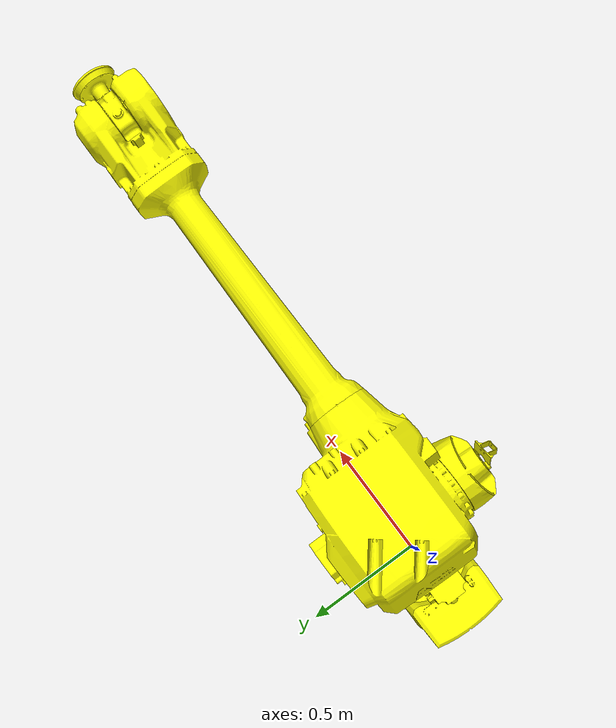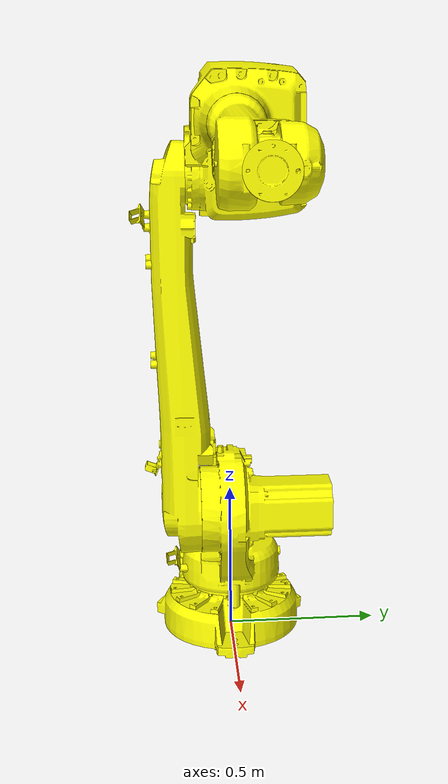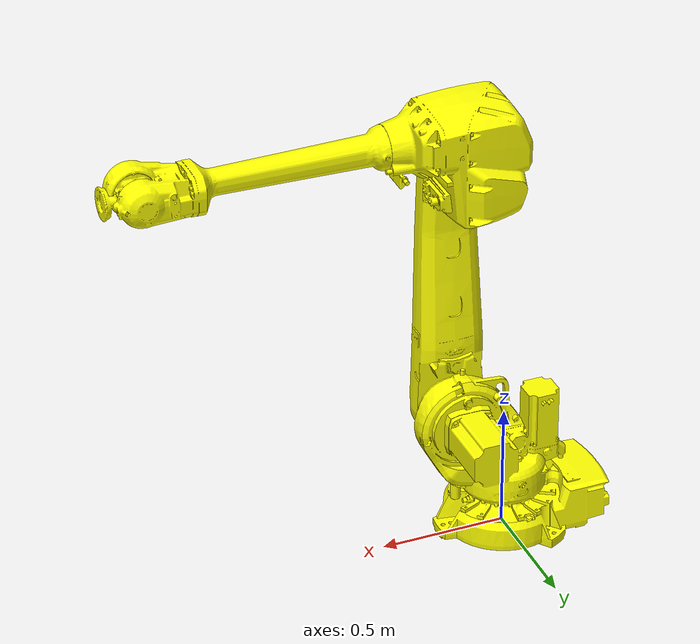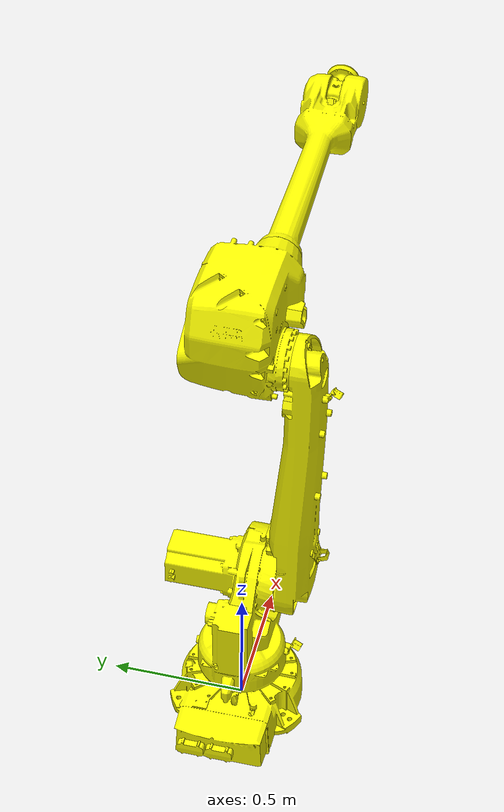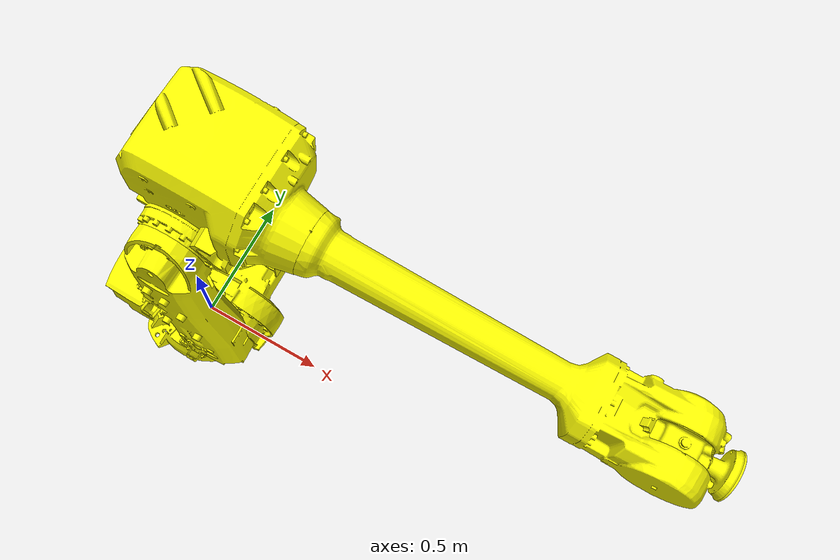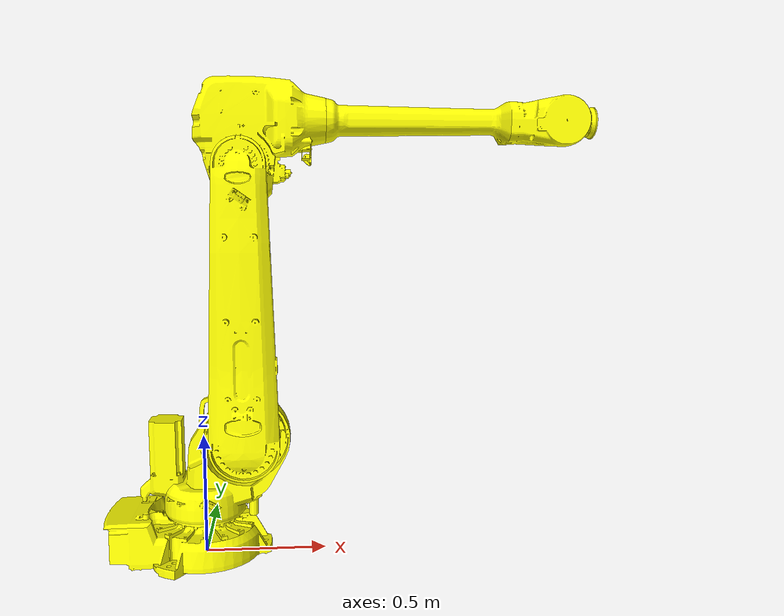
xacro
<?xml version="1.0" ?>

<robot name="abb_irb4600_40_255" xmlns:xacro="http://ros.org/wiki/xacro">
  <xacro:include filename="$(find abb_irb4600_gazebo)/urdf/irb4600_40_255_macro.xacro"/>
  <xacro:abb_irb4600_40_255_g prefix=""/>

  <!-- Fix robot to Gazebo world -->
  <link name="world"/>
  <joint name="world-base_link-fixed" type="fixed">
    <parent link="world"/>
    <child link="base_link"/>
  </joint>
</robot>

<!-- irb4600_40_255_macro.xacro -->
<robot xmlns:xacro="http://ros.org/wiki/xacro">
<xacro:include filename="$(find abb_irb4600_support)/urdf/irb4600_40_255_macro.xacro"/>
<xacro:macro name="abb_irb4600_40_255_g" params="prefix">

  <!-- get base ABB IRB4600 model -->
  <xacro:abb_irb4600_40_255 prefix="${prefix}" />

  <!-- transmission list -->
    <transmission name="${prefix}trans_joint_1">
        <type>transmission_interface/SimpleTransmission</type>
        <joint name="${prefix}joint_1">
            <hardwareInterface>PositionJointInterface</hardwareInterface>
        </joint>
        <actuator name="${prefix}joint_1_motor">
            <mechanicalReduction>1</mechanicalReduction>
        </actuator>
    </transmission>
    <transmission name="${prefix}trans_joint_2">
        <type>transmission_interface/SimpleTransmission</type>
        <joint name="joint_2">
            <hardwareInterface>PositionJointInterface</hardwareInterface>
        </joint>
        <actuator name="${prefix}joint_2_motor">
            <mechanicalReduction>1</mechanicalReduction>
        </actuator>
    </transmission>
    <transmission name="${prefix}trans_joint_3">
        <type>transmission_interface/SimpleTransmission</type>
        <joint name="${prefix}joint_3">
            <hardwareInterface>PositionJointInterface</hardwareInterface>
        </joint>
        <actuator name="${prefix}joint_3_motor">
            <mechanicalReduction>1</mechanicalReduction>
        </actuator>
    </transmission>
    <transmission name="${prefix}trans_joint_4">
        <type>transmission_interface/SimpleTransmission</type>
        <joint name="${prefix}joint_4">
            <hardwareInterface>PositionJointInterface</hardwareInterface>
        </joint>
        <actuator name="${prefix}joint_4_motor">
            <mechanicalReduction>1</mechanicalReduction>
        </actuator>
    </transmission>
    <transmission name="${prefix}trans_joint_5">
        <type>transmission_interface/SimpleTransmission</type>
        <joint name="joint_5">
            <hardwareInterface>PositionJointInterface</hardwareInterface>
        </joint>
        <actuator name="${prefix}joint_5_motor">
            <mechanicalReduction>1</mechanicalReduction>
        </actuator>
    </transmission>
    <transmission name="${prefix}trans_joint_6">
        <type>transmission_interface/SimpleTransmission</type>
        <joint name="joint_6">
            <hardwareInterface>PositionJointInterface</hardwareInterface>
        </joint>
        <actuator name="${prefix}joint_6_motor">
            <mechanicalReduction>1</mechanicalReduction>
        </actuator>
    </transmission>
  <!-- end of transmission list -->

  <!-- Gazebo-specific link properties -->
  <gazebo reference="${prefix}base_link">
    <material>Gazebo/Orange</material>
    <turnGravityOff>true</turnGravityOff>
  </gazebo>
  <gazebo reference="${prefix}link_1">
    <material>Gazebo/Orange</material>
    <turnGravityOff>true</turnGravityOff>
  </gazebo>
  <gazebo reference="${prefix}link_2">
    <material>Gazebo/Orange</material>
    <turnGravityOff>true</turnGravityOff>
  </gazebo>
  <gazebo reference="${prefix}link_3">
    <material>Gazebo/Orange</material>
    <turnGravityOff>true</turnGravityOff>
  </gazebo>
  <gazebo reference="${prefix}link_4">
    <material>Gazebo/Orange</material>
    <turnGravityOff>true</turnGravityOff>
  </gazebo>
  <gazebo reference="${prefix}link_5">
    <material>Gazebo/Orange</material>
    <turnGravityOff>true</turnGravityOff>
  </gazebo>
  <gazebo reference="${prefix}link_6">
    <material>Gazebo/Black</material>
    <turnGravityOff>true</turnGravityOff>
  </gazebo>

  <!-- ros_control plugin -->
  <gazebo>
    <plugin name="gazebo_ros_control" filename="libgazebo_ros_control.so">
      <robotNamespace>/</robotNamespace>
      <robotSimType>gazebo_ros_control/DefaultRobotHWSim</robotSimType>
    </plugin>
  </gazebo>

  </xacro:macro>
</robot>

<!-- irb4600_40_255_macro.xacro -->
<robot xmlns:xacro="http://ros.org/wiki/xacro">
  <xacro:macro name="abb_irb4600_40_255" params="prefix">
    <xacro:include filename="$(find abb_resources)/urdf/common_materials.xacro"/>

    <!-- link list -->
    <link name="${prefix}base_link">
      <collision name="collision">
        <geometry>
          <mesh filename="package://abb_irb4600_support/meshes/irb4600/collision/base_link.stl"/>
        </geometry>
        <xacro:material_abb_white/>
      </collision>
      <visual name="visual">
        <geometry>
          <mesh filename="package://abb_irb4600_support/meshes/irb4600/visual/base_link.dae"/>
        </geometry>
        <xacro:material_abb_white/>
        <material name="yellow">
          <color rgba="1 1 0 1"/>
        </material>
      </visual>
      <inertial>
        <mass value="0.1" />
        <inertia ixx="0.03" iyy="0.03" izz="0.03" ixy="0.0" ixz="0.0" iyz="0.0" />
      </inertial>
    </link>

    <link name="${prefix}link_1">
      <collision name="collision">
        <geometry>
          <mesh filename="package://abb_irb4600_support/meshes/irb4600/collision/link_1.stl"/>
        </geometry>
        <xacro:material_abb_white/>
      </collision>
      <visual name="visual">
        <geometry>
          <mesh filename="package://abb_irb4600_support/meshes/irb4600/visual/link_1.dae"/>
        </geometry>
        <xacro:material_abb_white/>
        <material name="yellow"/>
      </visual>
      <inertial>
        <mass value="0.1" />
        <inertia ixx="0.03" iyy="0.03" izz="0.03" ixy="0.0" ixz="0.0" iyz="0.0" />
      </inertial>
    </link>

    <link name="${prefix}link_2">
      <collision name="collision">
        <geometry>
          <mesh filename="package://abb_irb4600_support/meshes/irb4600_40_255/collision/link_2.stl"/>
        </geometry>
        <xacro:material_abb_white/>
      </collision>
      <visual name="visual">
        <geometry>
          <mesh filename="package://abb_irb4600_support/meshes/irb4600_40_255/visual/link_2.dae"/>
        </geometry>
        <xacro:material_abb_white/>
        <material name="yellow"/>
      </visual>
      <inertial>
        <mass value="0.1" />
        <inertia ixx="0.03" iyy="0.03" izz="0.03" ixy="0.0" ixz="0.0" iyz="0.0" />
      </inertial>
    </link>

    <link name="${prefix}link_3">
      <collision name="collision">
        <geometry>
          <mesh filename="package://abb_irb4600_support/meshes/irb4600_40_255/collision/link_3.stl"/>
        </geometry>
        <xacro:material_abb_white/>
      </collision>
      <visual name="visual">
        <geometry>
          <mesh filename="package://abb_irb4600_support/meshes/irb4600_40_255/visual/link_3.dae"/>
        </geometry>
        <xacro:material_abb_white/>
        <material name="yellow"/>
      </visual>
      <inertial>
        <mass value="0.1" />
        <inertia ixx="0.03" iyy="0.03" izz="0.03" ixy="0.0" ixz="0.0" iyz="0.0" />
      </inertial>
    </link>

    <link name="${prefix}link_4">
      <collision name="collision">
        <geometry>
          <mesh filename="package://abb_irb4600_support/meshes/irb4600_40_255/collision/link_4.stl"/>
        </geometry>
        <xacro:material_abb_white/>
      </collision>
      <visual name="visual">
        <geometry>
          <mesh filename="package://abb_irb4600_support/meshes/irb4600_40_255/visual/link_4.dae"/>
        </geometry>
        <xacro:material_abb_white/>
        <material name="yellow"/>
      </visual>
      <inertial>
        <mass value="0.1" />
        <inertia ixx="0.03" iyy="0.03" izz="0.03" ixy="0.0" ixz="0.0" iyz="0.0" />
      </inertial>
    </link>

    <link name="${prefix}link_5">
      <collision name="collision">
        <geometry>
          <mesh filename="package://abb_irb4600_support/meshes/irb4600_40_255/collision/link_5.stl"/>
        </geometry>
        <xacro:material_abb_white/>
      </collision>
      <visual name="visual">
        <geometry>
          <mesh filename="package://abb_irb4600_support/meshes/irb4600_40_255/visual/link_5.dae"/>
        </geometry>
        <xacro:material_abb_white/>
        <material name="yellow"/>
      </visual>
      <inertial>
        <mass value="0.1" />
        <inertia ixx="0.03" iyy="0.03" izz="0.03" ixy="0.0" ixz="0.0" iyz="0.0" />
      </inertial>
    </link>

    <link name="${prefix}link_6">
      <collision name="collision">
        <geometry>
          <mesh filename="package://abb_irb4600_support/meshes/irb4600_40_255/collision/link_6.stl"/>
        </geometry>
        <xacro:material_abb_white/>
      </collision>
      <visual name="visual">
        <geometry>
          <mesh filename="package://abb_irb4600_support/meshes/irb4600_40_255/visual/link_6.dae"/>
        </geometry>
        <xacro:material_abb_white/>
        <material name="yellow"/>
      </visual>
      <inertial>
        <mass value="0.1" />
        <inertia ixx="0.03" iyy="0.03" izz="0.03" ixy="0.0" ixz="0.0" iyz="0.0" />
      </inertial>
    </link>
    <!-- end of link list -->

    <!-- joint list -->
    <joint type="revolute" name="${prefix}joint_1">
      <origin xyz="0 0 0.495" rpy="0 0 0"/>
      <axis xyz="0 0 1"/>
      <parent link="${prefix}base_link"/>
      <child link="${prefix}link_1"/>
      <limit effort="0" lower="${radians(-180)}" upper="${radians(180)}" velocity="${radians(175)}"/>
    </joint>
    <joint type="revolute" name="${prefix}joint_2">
      <origin xyz="0.175 0 0" rpy="0 0 0"/>
      <axis xyz="0 1 0"/>
      <parent link="${prefix}link_1"/>
      <child link="${prefix}link_2"/>
      <limit effort="0" lower="${radians(-90)}" upper="${radians(150)}" velocity="${radians(175)}"/>
    </joint>
    <joint type="revolute" name="${prefix}joint_3">
      <origin xyz="0 0 1.095" rpy="0 0 0"/>
      <axis xyz="0 1 0"/>
      <parent link="${prefix}link_2"/>
      <child link="${prefix}link_3"/>
      <limit effort="0" lower="${radians(-180)}" upper="${radians(75)}" velocity="${radians(175)}"/>
    </joint>
    <joint type="revolute" name="${prefix}joint_4">
      <origin xyz="0 0 0.175" rpy="0 0 0"/>
      <axis xyz="1 0 0"/>
      <parent link="${prefix}link_3"/>
      <child link="${prefix}link_4"/>
      <limit effort="0" lower="${radians(-400)}" upper="${radians(400)}" velocity="${radians(250)}"/>
    </joint>
    <joint type="revolute" name="${prefix}joint_5">
      <origin xyz="1.270 0 0" rpy="0 0 0"/>
      <axis xyz="0 1 0"/>
      <parent link="${prefix}link_4"/>
      <child link="${prefix}link_5"/>
      <limit effort="0" lower="${radians(-125)}" upper="${radians(120)}" velocity="${radians(250)}"/>
    </joint>
    <joint type="revolute" name="${prefix}joint_6">
      <origin xyz="0.135 0 0" rpy="0 0 0"/>
      <axis xyz="1 0 0"/>
      <parent link="${prefix}link_5"/>
      <child link="${prefix}link_6"/>
      <limit effort="0" lower="${radians(-400)}" upper="${radians(400)}" velocity="${radians(360)}"/>
    </joint>
    <!-- end of joint list -->

    <!-- ROS-Industrial 'base' frame: base_link to ABB World Coordinates transform -->
    <link name="${prefix}base" />
    <joint name="${prefix}base_link-base" type="fixed">
      <origin xyz="0 0 0" rpy="0 0 0"/>
      <parent link="${prefix}base_link"/>
      <child link="${prefix}base"/>
    </joint>

    <!-- ROS-Industrial 'flange' frame: attachment point for EEF models -->
    <link name="${prefix}flange"/>
    <joint type="fixed" name="${prefix}joint_6-flange">
      <origin xyz="0 0 0" rpy="0 0 0"/>
      <parent link="${prefix}link_6"/>
      <child link="${prefix}flange"/>
    </joint>

    <!-- ROS-Industrial 'tool0' frame: all-zeros tool frame -->
    <link name="${prefix}tool0" />
    <joint name="${prefix}link_6-tool0" type="fixed">
      <origin xyz="0 0 0" rpy="0 ${radians(90)} 0" />
      <parent link="${prefix}flange" />
      <child link="${prefix}tool0" />
    </joint>
  </xacro:macro>
</robot>
